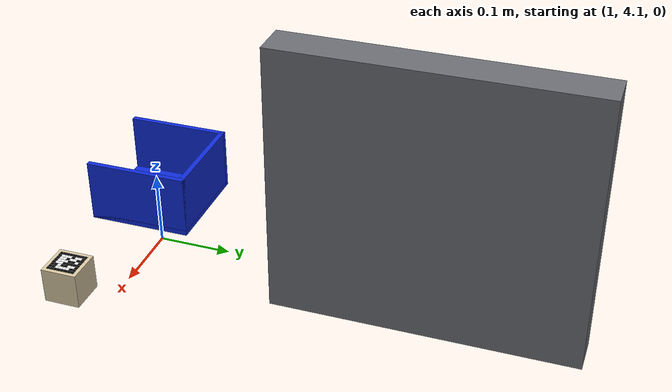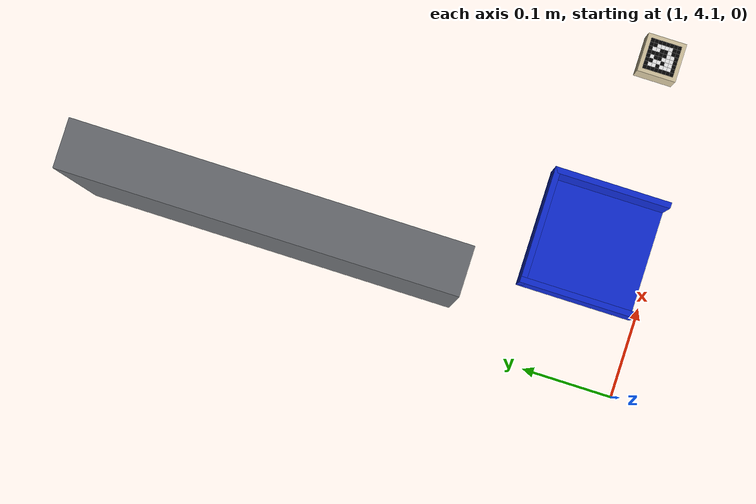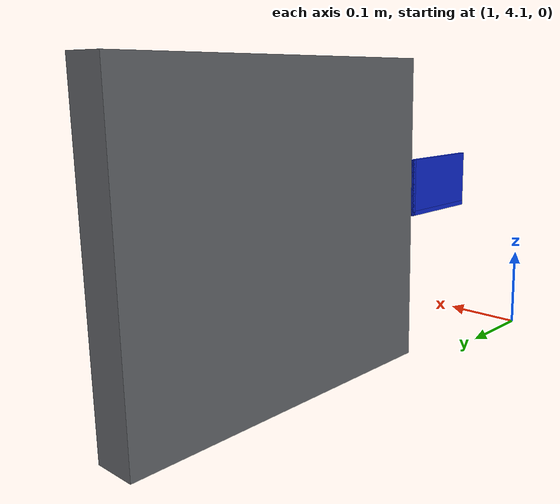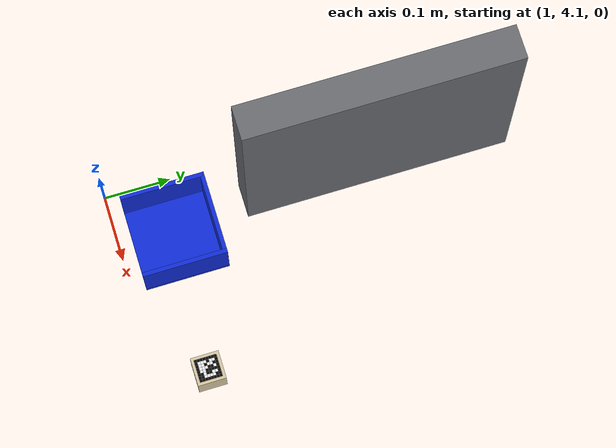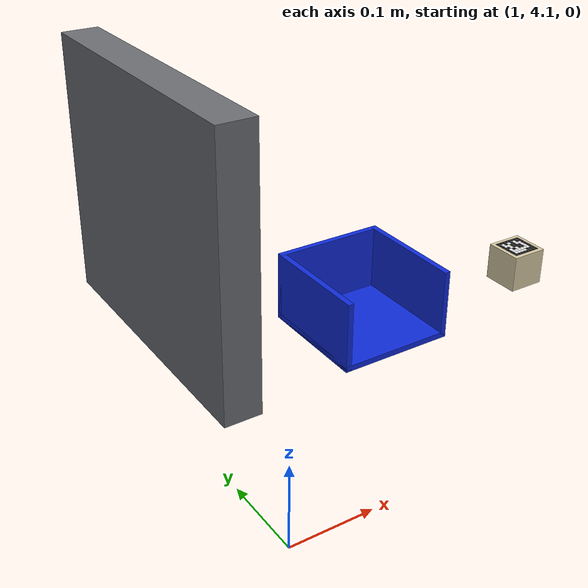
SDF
<sdf version="1.9">
 <world name="arena">
  <model name="map_wall_5">
   <static>true</static>
   <pose>1.06400 4.49500 0.18000 0 0 0.0000000</pose>
   <link name="body">
    <collision name="collision"><geometry><box><size>0.05000 0.40000 0.36000</size></box></geometry></collision>
    <visual name="appearance">
     <geometry><box><size>0.05000 0.40000 0.36000</size></box></geometry>
     <material><ambient>0.42 0.43 0.45 1</ambient><diffuse>0.42 0.43 0.45 1</diffuse></material>
    </visual>
   </link>
  </model>
  <model name="cube_11">
   <pose>1.33626 4.17008 0.18200 0 0 0</pose>
   <link name="body">
    <inertial>
     <mass>0.04</mass>
     <inertia>
      <ixx>0.000010667</ixx>
      <iyy>0.000010667</iyy>
      <izz>0.000010667</izz>
      <ixy>0</ixy>
      <ixz>0</ixz>
      <iyz>0</iyz>
     </inertia>
    </inertial>
    <collision name="cube">
     <geometry><box><size>0.04 0.04 0.04</size></box></geometry>
     <surface><friction><ode><mu>1.2</mu><mu2>1.2</mu2></ode></friction></surface>
    </collision>
    <visual name="cube_appearance">
     <geometry><box><size>0.04 0.04 0.04</size></box></geometry>
     <material><ambient>0.85 0.79 0.64 1</ambient><diffuse>0.85 0.79 0.64 1</diffuse></material>
    </visual>
    <visual name="tag_0_0">
     <pose>-0.0140 0.0140 0.0202 0 0 0</pose>
     <geometry><plane><normal>0 0 1</normal><size>0.004 0.004</size></plane></geometry>
     <material><ambient>0.01 0.01 0.01 1</ambient><diffuse>0.01 0.01 0.01 1</diffuse></material>
    </visual>
    <visual name="tag_0_1">
     <pose>-0.0100 0.0140 0.0202 0 0 0</pose>
     <geometry><plane><normal>0 0 1</normal><size>0.004 0.004</size></plane></geometry>
     <material><ambient>0.01 0.01 0.01 1</ambient><diffuse>0.01 0.01 0.01 1</diffuse></material>
    </visual>
    <visual name="tag_0_2">
     <pose>-0.0060 0.0140 0.0202 0 0 0</pose>
     <geometry><plane><normal>0 0 1</normal><size>0.004 0.004</size></plane></geometry>
     <material><ambient>0.01 0.01 0.01 1</ambient><diffuse>0.01 0.01 0.01 1</diffuse></material>
    </visual>
    <visual name="tag_0_3">
     <pose>-0.0020 0.0140 0.0202 0 0 0</pose>
     <geometry><plane><normal>0 0 1</normal><size>0.004 0.004</size></plane></geometry>
     <material><ambient>0.01 0.01 0.01 1</ambient><diffuse>0.01 0.01 0.01 1</diffuse></material>
    </visual>
    <visual name="tag_0_4">
     <pose>0.0020 0.0140 0.0202 0 0 0</pose>
     <geometry><plane><normal>0 0 1</normal><size>0.004 0.004</size></plane></geometry>
     <material><ambient>0.01 0.01 0.01 1</ambient><diffuse>0.01 0.01 0.01 1</diffuse></material>
    </visual>
    <visual name="tag_0_5">
     <pose>0.0060 0.0140 0.0202 0 0 0</pose>
     <geometry><plane><normal>0 0 1</normal><size>0.004 0.004</size></plane></geometry>
     <material><ambient>0.01 0.01 0.01 1</ambient><diffuse>0.01 0.01 0.01 1</diffuse></material>
    </visual>
    <visual name="tag_0_6">
     <pose>0.0100 0.0140 0.0202 0 0 0</pose>
     <geometry><plane><normal>0 0 1</normal><size>0.004 0.004</size></plane></geometry>
     <material><ambient>0.01 0.01 0.01 1</ambient><diffuse>0.01 0.01 0.01 1</diffuse></material>
    </visual>
    <visual name="tag_0_7">
     <pose>0.0140 0.0140 0.0202 0 0 0</pose>
     <geometry><plane><normal>0 0 1</normal><size>0.004 0.004</size></plane></geometry>
     <material><ambient>0.01 0.01 0.01 1</ambient><diffuse>0.01 0.01 0.01 1</diffuse></material>
    </visual>
    <visual name="tag_1_0">
     <pose>-0.0140 0.0100 0.0202 0 0 0</pose>
     <geometry><plane><normal>0 0 1</normal><size>0.004 0.004</size></plane></geometry>
     <material><ambient>0.01 0.01 0.01 1</ambient><diffuse>0.01 0.01 0.01 1</diffuse></material>
    </visual>
    <visual name="tag_1_1">
     <pose>-0.0100 0.0100 0.0202 0 0 0</pose>
     <geometry><plane><normal>0 0 1</normal><size>0.004 0.004</size></plane></geometry>
     <material><ambient>0.95 0.95 0.95 1</ambient><diffuse>0.95 0.95 0.95 1</diffuse></material>
    </visual>
    <visual name="tag_1_2">
     <pose>-0.0060 0.0100 0.0202 0 0 0</pose>
     <geometry><plane><normal>0 0 1</normal><size>0.004 0.004</size></plane></geometry>
     <material><ambient>0.01 0.01 0.01 1</ambient><diffuse>0.01 0.01 0.01 1</diffuse></material>
    </visual>
    <visual name="tag_1_3">
     <pose>-0.0020 0.0100 0.0202 0 0 0</pose>
     <geometry><plane><normal>0 0 1</normal><size>0.004 0.004</size></plane></geometry>
     <material><ambient>0.95 0.95 0.95 1</ambient><diffuse>0.95 0.95 0.95 1</diffuse></material>
    </visual>
    <visual name="tag_1_4">
     <pose>0.0020 0.0100 0.0202 0 0 0</pose>
     <geometry><plane><normal>0 0 1</normal><size>0.004 0.004</size></plane></geometry>
     <material><ambient>0.01 0.01 0.01 1</ambient><diffuse>0.01 0.01 0.01 1</diffuse></material>
    </visual>
    <visual name="tag_1_5">
     <pose>0.0060 0.0100 0.0202 0 0 0</pose>
     <geometry><plane><normal>0 0 1</normal><size>0.004 0.004</size></plane></geometry>
     <material><ambient>0.95 0.95 0.95 1</ambient><diffuse>0.95 0.95 0.95 1</diffuse></material>
    </visual>
    <visual name="tag_1_6">
     <pose>0.0100 0.0100 0.0202 0 0 0</pose>
     <geometry><plane><normal>0 0 1</normal><size>0.004 0.004</size></plane></geometry>
     <material><ambient>0.01 0.01 0.01 1</ambient><diffuse>0.01 0.01 0.01 1</diffuse></material>
    </visual>
    <visual name="tag_1_7">
     <pose>0.0140 0.0100 0.0202 0 0 0</pose>
     <geometry><plane><normal>0 0 1</normal><size>0.004 0.004</size></plane></geometry>
     <material><ambient>0.01 0.01 0.01 1</ambient><diffuse>0.01 0.01 0.01 1</diffuse></material>
    </visual>
    <visual name="tag_2_0">
     <pose>-0.0140 0.0060 0.0202 0 0 0</pose>
     <geometry><plane><normal>0 0 1</normal><size>0.004 0.004</size></plane></geometry>
     <material><ambient>0.01 0.01 0.01 1</ambient><diffuse>0.01 0.01 0.01 1</diffuse></material>
    </visual>
    <visual name="tag_2_1">
     <pose>-0.0100 0.0060 0.0202 0 0 0</pose>
     <geometry><plane><normal>0 0 1</normal><size>0.004 0.004</size></plane></geometry>
     <material><ambient>0.95 0.95 0.95 1</ambient><diffuse>0.95 0.95 0.95 1</diffuse></material>
    </visual>
    <visual name="tag_2_2">
     <pose>-0.0060 0.0060 0.0202 0 0 0</pose>
     <geometry><plane><normal>0 0 1</normal><size>0.004 0.004</size></plane></geometry>
     <material><ambient>0.95 0.95 0.95 1</ambient><diffuse>0.95 0.95 0.95 1</diffuse></material>
    </visual>
    <visual name="tag_2_3">
     <pose>-0.0020 0.0060 0.0202 0 0 0</pose>
     <geometry><plane><normal>0 0 1</normal><size>0.004 0.004</size></plane></geometry>
     <material><ambient>0.01 0.01 0.01 1</ambient><diffuse>0.01 0.01 0.01 1</diffuse></material>
    </visual>
    <visual name="tag_2_4">
     <pose>0.0020 0.0060 0.0202 0 0 0</pose>
     <geometry><plane><normal>0 0 1</normal><size>0.004 0.004</size></plane></geometry>
     <material><ambient>0.01 0.01 0.01 1</ambient><diffuse>0.01 0.01 0.01 1</diffuse></material>
    </visual>
    <visual name="tag_2_5">
     <pose>0.0060 0.0060 0.0202 0 0 0</pose>
     <geometry><plane><normal>0 0 1</normal><size>0.004 0.004</size></plane></geometry>
     <material><ambient>0.95 0.95 0.95 1</ambient><diffuse>0.95 0.95 0.95 1</diffuse></material>
    </visual>
    <visual name="tag_2_6">
     <pose>0.0100 0.0060 0.0202 0 0 0</pose>
     <geometry><plane><normal>0 0 1</normal><size>0.004 0.004</size></plane></geometry>
     <material><ambient>0.95 0.95 0.95 1</ambient><diffuse>0.95 0.95 0.95 1</diffuse></material>
    </visual>
    <visual name="tag_2_7">
     <pose>0.0140 0.0060 0.0202 0 0 0</pose>
     <geometry><plane><normal>0 0 1</normal><size>0.004 0.004</size></plane></geometry>
     <material><ambient>0.01 0.01 0.01 1</ambient><diffuse>0.01 0.01 0.01 1</diffuse></material>
    </visual>
    <visual name="tag_3_0">
     <pose>-0.0140 0.0020 0.0202 0 0 0</pose>
     <geometry><plane><normal>0 0 1</normal><size>0.004 0.004</size></plane></geometry>
     <material><ambient>0.01 0.01 0.01 1</ambient><diffuse>0.01 0.01 0.01 1</diffuse></material>
    </visual>
    <visual name="tag_3_1">
     <pose>-0.0100 0.0020 0.0202 0 0 0</pose>
     <geometry><plane><normal>0 0 1</normal><size>0.004 0.004</size></plane></geometry>
     <material><ambient>0.01 0.01 0.01 1</ambient><diffuse>0.01 0.01 0.01 1</diffuse></material>
    </visual>
    <visual name="tag_3_2">
     <pose>-0.0060 0.0020 0.0202 0 0 0</pose>
     <geometry><plane><normal>0 0 1</normal><size>0.004 0.004</size></plane></geometry>
     <material><ambient>0.95 0.95 0.95 1</ambient><diffuse>0.95 0.95 0.95 1</diffuse></material>
    </visual>
    <visual name="tag_3_3">
     <pose>-0.0020 0.0020 0.0202 0 0 0</pose>
     <geometry><plane><normal>0 0 1</normal><size>0.004 0.004</size></plane></geometry>
     <material><ambient>0.01 0.01 0.01 1</ambient><diffuse>0.01 0.01 0.01 1</diffuse></material>
    </visual>
    <visual name="tag_3_4">
     <pose>0.0020 0.0020 0.0202 0 0 0</pose>
     <geometry><plane><normal>0 0 1</normal><size>0.004 0.004</size></plane></geometry>
     <material><ambient>0.01 0.01 0.01 1</ambient><diffuse>0.01 0.01 0.01 1</diffuse></material>
    </visual>
    <visual name="tag_3_5">
     <pose>0.0060 0.0020 0.0202 0 0 0</pose>
     <geometry><plane><normal>0 0 1</normal><size>0.004 0.004</size></plane></geometry>
     <material><ambient>0.01 0.01 0.01 1</ambient><diffuse>0.01 0.01 0.01 1</diffuse></material>
    </visual>
    <visual name="tag_3_6">
     <pose>0.0100 0.0020 0.0202 0 0 0</pose>
     <geometry><plane><normal>0 0 1</normal><size>0.004 0.004</size></plane></geometry>
     <material><ambient>0.95 0.95 0.95 1</ambient><diffuse>0.95 0.95 0.95 1</diffuse></material>
    </visual>
    <visual name="tag_3_7">
     <pose>0.0140 0.0020 0.0202 0 0 0</pose>
     <geometry><plane><normal>0 0 1</normal><size>0.004 0.004</size></plane></geometry>
     <material><ambient>0.01 0.01 0.01 1</ambient><diffuse>0.01 0.01 0.01 1</diffuse></material>
    </visual>
    <visual name="tag_4_0">
     <pose>-0.0140 -0.0020 0.0202 0 0 0</pose>
     <geometry><plane><normal>0 0 1</normal><size>0.004 0.004</size></plane></geometry>
     <material><ambient>0.01 0.01 0.01 1</ambient><diffuse>0.01 0.01 0.01 1</diffuse></material>
    </visual>
    <visual name="tag_4_1">
     <pose>-0.0100 -0.0020 0.0202 0 0 0</pose>
     <geometry><plane><normal>0 0 1</normal><size>0.004 0.004</size></plane></geometry>
     <material><ambient>0.95 0.95 0.95 1</ambient><diffuse>0.95 0.95 0.95 1</diffuse></material>
    </visual>
    <visual name="tag_4_2">
     <pose>-0.0060 -0.0020 0.0202 0 0 0</pose>
     <geometry><plane><normal>0 0 1</normal><size>0.004 0.004</size></plane></geometry>
     <material><ambient>0.01 0.01 0.01 1</ambient><diffuse>0.01 0.01 0.01 1</diffuse></material>
    </visual>
    <visual name="tag_4_3">
     <pose>-0.0020 -0.0020 0.0202 0 0 0</pose>
     <geometry><plane><normal>0 0 1</normal><size>0.004 0.004</size></plane></geometry>
     <material><ambient>0.95 0.95 0.95 1</ambient><diffuse>0.95 0.95 0.95 1</diffuse></material>
    </visual>
    <visual name="tag_4_4">
     <pose>0.0020 -0.0020 0.0202 0 0 0</pose>
     <geometry><plane><normal>0 0 1</normal><size>0.004 0.004</size></plane></geometry>
     <material><ambient>0.01 0.01 0.01 1</ambient><diffuse>0.01 0.01 0.01 1</diffuse></material>
    </visual>
    <visual name="tag_4_5">
     <pose>0.0060 -0.0020 0.0202 0 0 0</pose>
     <geometry><plane><normal>0 0 1</normal><size>0.004 0.004</size></plane></geometry>
     <material><ambient>0.01 0.01 0.01 1</ambient><diffuse>0.01 0.01 0.01 1</diffuse></material>
    </visual>
    <visual name="tag_4_6">
     <pose>0.0100 -0.0020 0.0202 0 0 0</pose>
     <geometry><plane><normal>0 0 1</normal><size>0.004 0.004</size></plane></geometry>
     <material><ambient>0.95 0.95 0.95 1</ambient><diffuse>0.95 0.95 0.95 1</diffuse></material>
    </visual>
    <visual name="tag_4_7">
     <pose>0.0140 -0.0020 0.0202 0 0 0</pose>
     <geometry><plane><normal>0 0 1</normal><size>0.004 0.004</size></plane></geometry>
     <material><ambient>0.01 0.01 0.01 1</ambient><diffuse>0.01 0.01 0.01 1</diffuse></material>
    </visual>
    <visual name="tag_5_0">
     <pose>-0.0140 -0.0060 0.0202 0 0 0</pose>
     <geometry><plane><normal>0 0 1</normal><size>0.004 0.004</size></plane></geometry>
     <material><ambient>0.01 0.01 0.01 1</ambient><diffuse>0.01 0.01 0.01 1</diffuse></material>
    </visual>
    <visual name="tag_5_1">
     <pose>-0.0100 -0.0060 0.0202 0 0 0</pose>
     <geometry><plane><normal>0 0 1</normal><size>0.004 0.004</size></plane></geometry>
     <material><ambient>0.95 0.95 0.95 1</ambient><diffuse>0.95 0.95 0.95 1</diffuse></material>
    </visual>
    <visual name="tag_5_2">
     <pose>-0.0060 -0.0060 0.0202 0 0 0</pose>
     <geometry><plane><normal>0 0 1</normal><size>0.004 0.004</size></plane></geometry>
     <material><ambient>0.95 0.95 0.95 1</ambient><diffuse>0.95 0.95 0.95 1</diffuse></material>
    </visual>
    <visual name="tag_5_3">
     <pose>-0.0020 -0.0060 0.0202 0 0 0</pose>
     <geometry><plane><normal>0 0 1</normal><size>0.004 0.004</size></plane></geometry>
     <material><ambient>0.95 0.95 0.95 1</ambient><diffuse>0.95 0.95 0.95 1</diffuse></material>
    </visual>
    <visual name="tag_5_4">
     <pose>0.0020 -0.0060 0.0202 0 0 0</pose>
     <geometry><plane><normal>0 0 1</normal><size>0.004 0.004</size></plane></geometry>
     <material><ambient>0.95 0.95 0.95 1</ambient><diffuse>0.95 0.95 0.95 1</diffuse></material>
    </visual>
    <visual name="tag_5_5">
     <pose>0.0060 -0.0060 0.0202 0 0 0</pose>
     <geometry><plane><normal>0 0 1</normal><size>0.004 0.004</size></plane></geometry>
     <material><ambient>0.95 0.95 0.95 1</ambient><diffuse>0.95 0.95 0.95 1</diffuse></material>
    </visual>
    <visual name="tag_5_6">
     <pose>0.0100 -0.0060 0.0202 0 0 0</pose>
     <geometry><plane><normal>0 0 1</normal><size>0.004 0.004</size></plane></geometry>
     <material><ambient>0.95 0.95 0.95 1</ambient><diffuse>0.95 0.95 0.95 1</diffuse></material>
    </visual>
    <visual name="tag_5_7">
     <pose>0.0140 -0.0060 0.0202 0 0 0</pose>
     <geometry><plane><normal>0 0 1</normal><size>0.004 0.004</size></plane></geometry>
     <material><ambient>0.01 0.01 0.01 1</ambient><diffuse>0.01 0.01 0.01 1</diffuse></material>
    </visual>
    <visual name="tag_6_0">
     <pose>-0.0140 -0.0100 0.0202 0 0 0</pose>
     <geometry><plane><normal>0 0 1</normal><size>0.004 0.004</size></plane></geometry>
     <material><ambient>0.01 0.01 0.01 1</ambient><diffuse>0.01 0.01 0.01 1</diffuse></material>
    </visual>
    <visual name="tag_6_1">
     <pose>-0.0100 -0.0100 0.0202 0 0 0</pose>
     <geometry><plane><normal>0 0 1</normal><size>0.004 0.004</size></plane></geometry>
     <material><ambient>0.95 0.95 0.95 1</ambient><diffuse>0.95 0.95 0.95 1</diffuse></material>
    </visual>
    <visual name="tag_6_2">
     <pose>-0.0060 -0.0100 0.0202 0 0 0</pose>
     <geometry><plane><normal>0 0 1</normal><size>0.004 0.004</size></plane></geometry>
     <material><ambient>0.95 0.95 0.95 1</ambient><diffuse>0.95 0.95 0.95 1</diffuse></material>
    </visual>
    <visual name="tag_6_3">
     <pose>-0.0020 -0.0100 0.0202 0 0 0</pose>
     <geometry><plane><normal>0 0 1</normal><size>0.004 0.004</size></plane></geometry>
     <material><ambient>0.95 0.95 0.95 1</ambient><diffuse>0.95 0.95 0.95 1</diffuse></material>
    </visual>
    <visual name="tag_6_4">
     <pose>0.0020 -0.0100 0.0202 0 0 0</pose>
     <geometry><plane><normal>0 0 1</normal><size>0.004 0.004</size></plane></geometry>
     <material><ambient>0.95 0.95 0.95 1</ambient><diffuse>0.95 0.95 0.95 1</diffuse></material>
    </visual>
    <visual name="tag_6_5">
     <pose>0.0060 -0.0100 0.0202 0 0 0</pose>
     <geometry><plane><normal>0 0 1</normal><size>0.004 0.004</size></plane></geometry>
     <material><ambient>0.01 0.01 0.01 1</ambient><diffuse>0.01 0.01 0.01 1</diffuse></material>
    </visual>
    <visual name="tag_6_6">
     <pose>0.0100 -0.0100 0.0202 0 0 0</pose>
     <geometry><plane><normal>0 0 1</normal><size>0.004 0.004</size></plane></geometry>
     <material><ambient>0.01 0.01 0.01 1</ambient><diffuse>0.01 0.01 0.01 1</diffuse></material>
    </visual>
    <visual name="tag_6_7">
     <pose>0.0140 -0.0100 0.0202 0 0 0</pose>
     <geometry><plane><normal>0 0 1</normal><size>0.004 0.004</size></plane></geometry>
     <material><ambient>0.01 0.01 0.01 1</ambient><diffuse>0.01 0.01 0.01 1</diffuse></material>
    </visual>
    <visual name="tag_7_0">
     <pose>-0.0140 -0.0140 0.0202 0 0 0</pose>
     <geometry><plane><normal>0 0 1</normal><size>0.004 0.004</size></plane></geometry>
     <material><ambient>0.01 0.01 0.01 1</ambient><diffuse>0.01 0.01 0.01 1</diffuse></material>
    </visual>
    <visual name="tag_7_1">
     <pose>-0.0100 -0.0140 0.0202 0 0 0</pose>
     <geometry><plane><normal>0 0 1</normal><size>0.004 0.004</size></plane></geometry>
     <material><ambient>0.01 0.01 0.01 1</ambient><diffuse>0.01 0.01 0.01 1</diffuse></material>
    </visual>
    <visual name="tag_7_2">
     <pose>-0.0060 -0.0140 0.0202 0 0 0</pose>
     <geometry><plane><normal>0 0 1</normal><size>0.004 0.004</size></plane></geometry>
     <material><ambient>0.01 0.01 0.01 1</ambient><diffuse>0.01 0.01 0.01 1</diffuse></material>
    </visual>
    <visual name="tag_7_3">
     <pose>-0.0020 -0.0140 0.0202 0 0 0</pose>
     <geometry><plane><normal>0 0 1</normal><size>0.004 0.004</size></plane></geometry>
     <material><ambient>0.01 0.01 0.01 1</ambient><diffuse>0.01 0.01 0.01 1</diffuse></material>
    </visual>
    <visual name="tag_7_4">
     <pose>0.0020 -0.0140 0.0202 0 0 0</pose>
     <geometry><plane><normal>0 0 1</normal><size>0.004 0.004</size></plane></geometry>
     <material><ambient>0.01 0.01 0.01 1</ambient><diffuse>0.01 0.01 0.01 1</diffuse></material>
    </visual>
    <visual name="tag_7_5">
     <pose>0.0060 -0.0140 0.0202 0 0 0</pose>
     <geometry><plane><normal>0 0 1</normal><size>0.004 0.004</size></plane></geometry>
     <material><ambient>0.01 0.01 0.01 1</ambient><diffuse>0.01 0.01 0.01 1</diffuse></material>
    </visual>
    <visual name="tag_7_6">
     <pose>0.0100 -0.0140 0.0202 0 0 0</pose>
     <geometry><plane><normal>0 0 1</normal><size>0.004 0.004</size></plane></geometry>
     <material><ambient>0.01 0.01 0.01 1</ambient><diffuse>0.01 0.01 0.01 1</diffuse></material>
    </visual>
    <visual name="tag_7_7">
     <pose>0.0140 -0.0140 0.0202 0 0 0</pose>
     <geometry><plane><normal>0 0 1</normal><size>0.004 0.004</size></plane></geometry>
     <material><ambient>0.01 0.01 0.01 1</ambient><diffuse>0.01 0.01 0.01 1</diffuse></material>
    </visual>
   </link>
  </model>
  <model name="ws_3_blue_base">
   <static>true</static>
   <pose>1.13627 4.18024 0.16500 0 0 0.0000000</pose>
   <link name="body">
    <collision name="collision"><geometry><box><size>0.12000 0.12000 0.00600</size></box></geometry></collision>
    <visual name="appearance">
     <geometry><box><size>0.12000 0.12000 0.00600</size></box></geometry>
     <material><ambient>0.06 0.17 0.85 1</ambient><diffuse>0.06 0.17 0.85 1</diffuse></material>
    </visual>
   </link>
  </model>
  <model name="ws_3_blue_front">
   <static>true</static>
   <pose>1.19327 4.18024 0.19850 0 0 0.0000000</pose>
   <link name="body">
    <collision name="collision"><geometry><box><size>0.00600 0.12000 0.07300</size></box></geometry></collision>
    <visual name="appearance">
     <geometry><box><size>0.00600 0.12000 0.07300</size></box></geometry>
     <material><ambient>0.06 0.17 0.85 1</ambient><diffuse>0.06 0.17 0.85 1</diffuse></material>
    </visual>
   </link>
  </model>
  <model name="ws_3_blue_back">
   <static>true</static>
   <pose>1.07927 4.18024 0.19850 0 0 0.0000000</pose>
   <link name="body">
    <collision name="collision"><geometry><box><size>0.00600 0.12000 0.07300</size></box></geometry></collision>
    <visual name="appearance">
     <geometry><box><size>0.00600 0.12000 0.07300</size></box></geometry>
     <material><ambient>0.06 0.17 0.85 1</ambient><diffuse>0.06 0.17 0.85 1</diffuse></material>
    </visual>
   </link>
  </model>
  <model name="ws_3_blue_left">
   <static>true</static>
   <pose>1.13627 4.23724 0.19850 0 0 0.0000000</pose>
   <link name="body">
    <collision name="collision"><geometry><box><size>0.12000 0.00600 0.07300</size></box></geometry></collision>
    <visual name="appearance">
     <geometry><box><size>0.12000 0.00600 0.07300</size></box></geometry>
     <material><ambient>0.06 0.17 0.85 1</ambient><diffuse>0.06 0.17 0.85 1</diffuse></material>
    </visual>
   </link>
  </model>
 </world>
</sdf>
